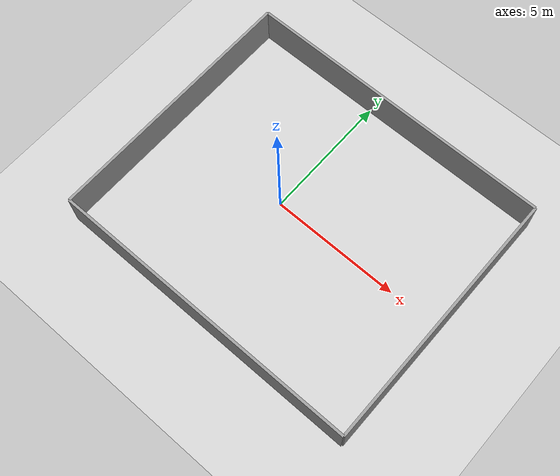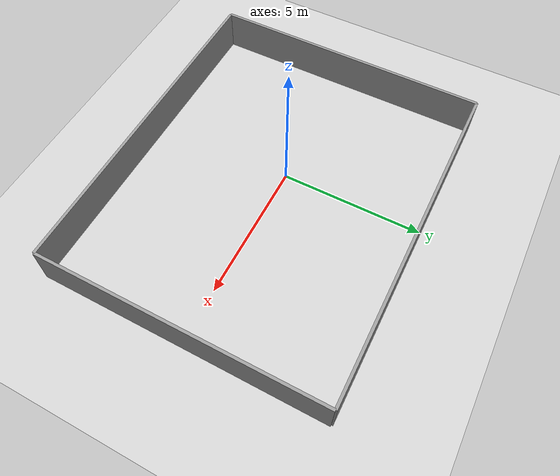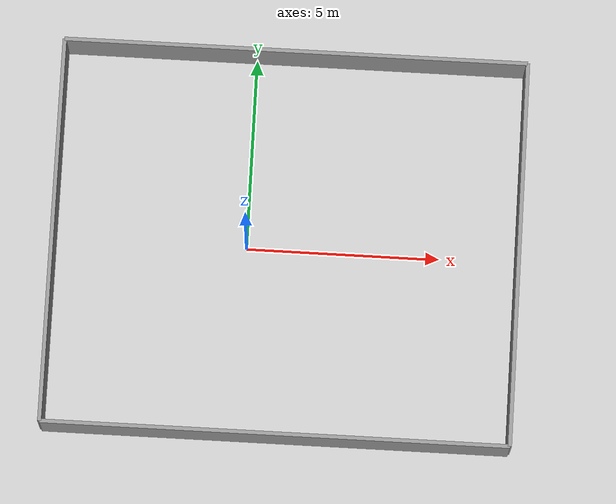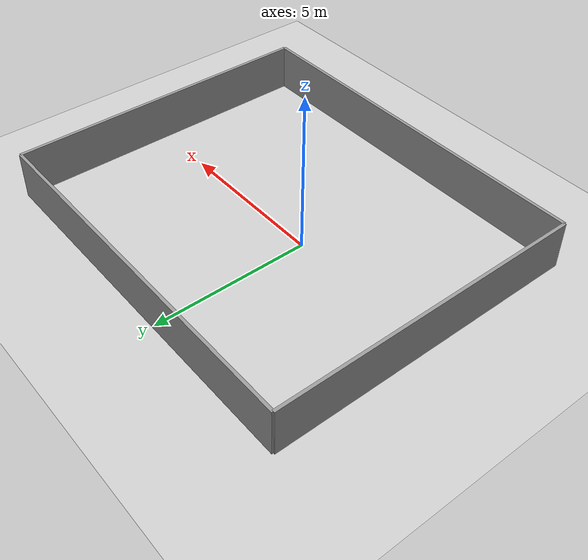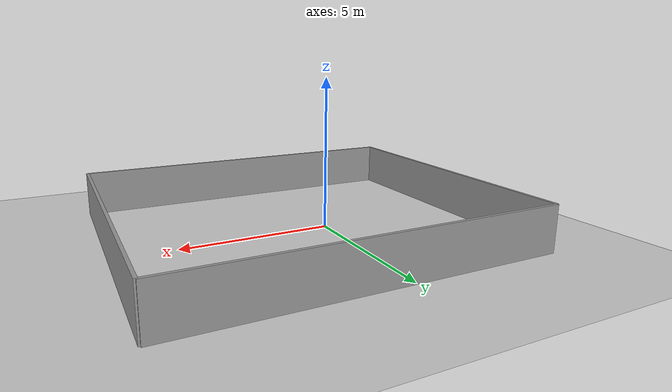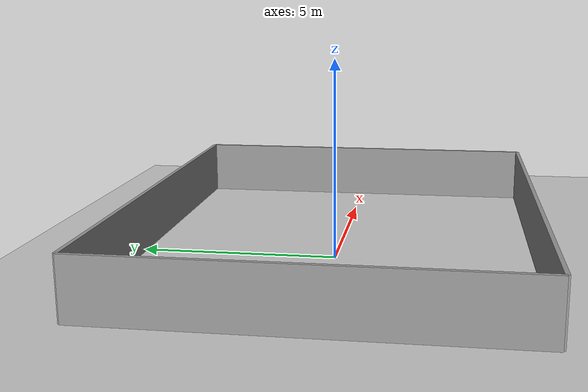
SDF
<?xml version="1.0" ?>
<sdf version="1.4">
  <world name="default">
    <include>
      <uri>model://ground_plane</uri>
    </include>

    <!-- Global light source -->
    <include>
      <uri>model://sun</uri>
    </include>

    <!-- Generate the walls -->
    <model name="wall_1">
      <static>true</static>

      <link name="wall_link_1">
        <collision name="wall_collision_1">
          <geometry>
            <box>
              <size>10.0 0.1 2.0</size>
            </box>
          </geometry>
          <pose>7.0 0.0 0.5 0 0 1.57</pose>
        </collision>
        <visual name="wall_visual_1">
          <geometry>
            <box>
              <size>10.0 0.1 2.0</size>
            </box>
          </geometry>
          <pose>7.0 0.0 0.5 0 0 1.57</pose>
          <material>
            <script>
              <uri>file://media/materials/scripts/gazebo.material</uri>
              <name>Gazebo/Grey</name>
            </script>
          </material>
        </visual>
      </link>
    </model>

    <model name="wall_2">
      <static>true</static>

      <link name="wall_link_2">
        <collision name="wall_collision_2">
          <geometry>
            <box>
              <size>10.0 0.1 2.0</size>
            </box>
          </geometry>
          <pose>-5.0 0.0 0.5 0 0 1.57</pose>
        </collision>
        <visual name="wall_visual_2">
          <geometry>
            <box>
              <size>10.0 0.1 2.0</size>
            </box>
          </geometry>
          <pose>-5.0 0.0 0.5 0 0 1.57</pose>
          <material>
            <script>
              <uri>file://media/materials/scripts/gazebo.material</uri>
              <name>Gazebo/Grey</name>
            </script>
          </material>
        </visual>
      </link>
    </model>

    <model name="wall_3">
      <static>true</static>

      <link name="wall_link_3">
        <collision name="wall_collision_3">
          <geometry>
            <box>
              <size>12.0 0.1 2.0</size>
            </box>
          </geometry>
          <pose>1.0 5.0 0.5 0 0 0</pose>
        </collision>
        <visual name="wall_visual_3">
          <geometry>
            <box>
              <size>12.0 0.1 2.0</size>
            </box>
          </geometry>
          <pose>1.0 5.0 0.5 0 0 0</pose>
          <material>
            <script>
              <uri>file://media/materials/scripts/gazebo.material</uri>
              <name>Gazebo/Grey</name>
            </script>
          </material>
        </visual>
      </link>
    </model>

    <model name="wall_4">
      <static>true</static>

      <link name="wall_link_4">
        <collision name="wall_collision_4">
          <geometry>
            <box>
              <size>12.0 0.1 2.0</size>
            </box>
          </geometry>
          <pose>1.0 -5.0 0.5 0 0 0</pose>
        </collision>
        <visual name="wall_visual_4">
          <geometry>
            <box>
              <size>12.0 0.1 2.0</size>
            </box>
          </geometry>
          <pose>1.0 -5.0 0.5 0 0 0</pose>
          <material>
            <script>
              <uri>file://media/materials/scripts/gazebo.material</uri>
              <name>Gazebo/Grey</name>
            </script>
          </material>
        </visual>
      </link>
    </model>

  </world>
</sdf>
